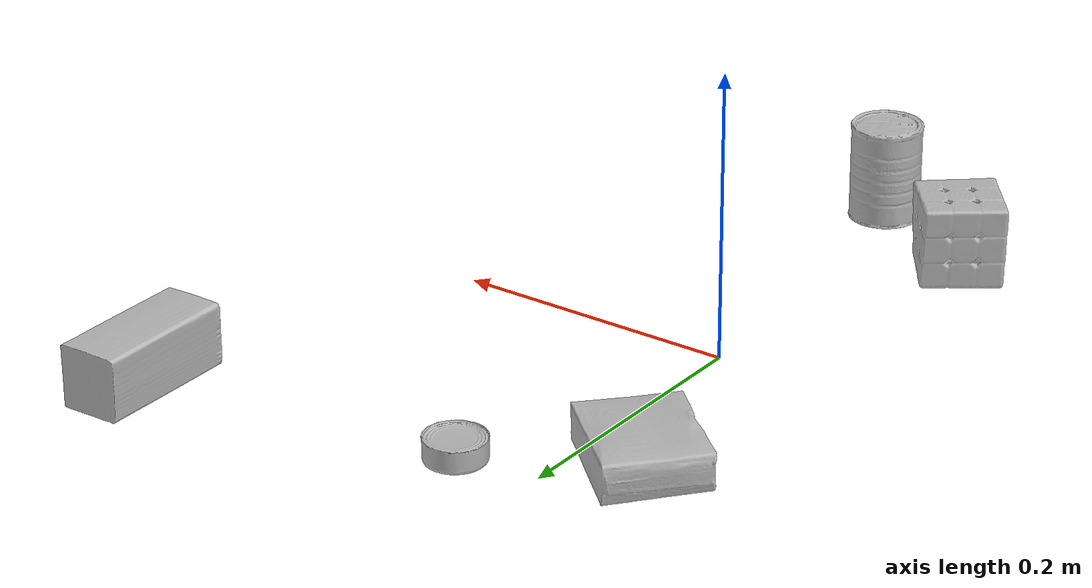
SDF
<sdf version="1.4">
  <world name="default">
    <light name="light1" type="point">
      <pose>0 0 1 0 0 0</pose>
      <diffuse>3 3 3 1</diffuse>
      <specular>3 3 3 1</specular>
    </light>
    <light name="light2" type="point">
      <pose>0 0.5 2 0 0 0</pose>
      <diffuse>1 1 1 1</diffuse>
      <specular>1 1 1 1</specular>
    </light>
    <light name="light3" type="point">
      <pose>0 0.5 2 0 0 0</pose>
      <diffuse>3 3 3 1</diffuse>
      <specular>3 3 3 1</specular>
    </light>
    <scene>
      <ambient>0.7 0.7 0.7</ambient>
    </scene>
    <model name="box1">
      <link name="link_box1">
        <collision name="default">
          <geometry>
            <mesh>
              <uri>model://rubiks_cube/collision_meshes/collision.obj</uri>
              <scale>1.0 1.0 1.0</scale>
            </mesh>
          </geometry>
          <surface>
            <friction>
              <ode>
                <mu>0.5</mu>
                <mu2>0.5</mu2>
              </ode>
            </friction>
          <contact>
        <ode>
            <max_vel>0</max_vel>
            <min_depth>0.0001</min_depth>
            <kp>1e8</kp>
        </ode>
    </contact></surface>
        </collision>
        <visual name="default">
          <geometry>
            <mesh>
              <uri>model://rubiks_cube/visual_meshes/visual.dae</uri>
              <scale>1.0 1.0 1.0</scale>
            </mesh>
          </geometry>
        </visual>
        <inertial>
          <mass>0.1675702929496765</mass>
          <pose>2.6721041649580002e-05 5.2569666877388954e-05 -7.264316082000732e-06 -0.054672410780645164 -0.09813946178663992 -0.034457105846518836</pose>
          <inertia>
            <ixx>9.259384e-05</ixx>
            <iyy>9.2162045e-05</iyy>
            <izz>9.336113e-05</izz>
            <ixy>0</ixy>
            <ixz>0</ixz>
            <iyz>0</iyz>
          </inertia>
        </inertial>
      </link>
      <pose>-0.06008411943912506 -0.20482346415519714 0.02867898717522621 -3.178025001263808e-06 -9.075454926920735e-07 2.2317550686361414</pose>
    </model>
    <model name="box2">
      <link name="link_box2">
        <collision name="default">
          <geometry>
            <mesh>
              <uri>model://wood_block/collision_meshes/collision.obj</uri>
              <scale>0.5 0.5 0.5</scale>
            </mesh>
          </geometry>
          <surface>
            <friction>
              <ode>
                <mu>0.5</mu>
                <mu2>0.5</mu2>
              </ode>
            </friction>
          <contact>
        <ode>
            <max_vel>0</max_vel>
            <min_depth>0.0001</min_depth>
            <kp>1e8</kp>
        </ode>
    </contact></surface>
        </collision>
        <visual name="default">
          <geometry>
            <mesh>
              <uri>model://wood_block/visual_meshes/visual.dae</uri>
              <scale>0.5 0.5 0.5</scale>
            </mesh>
          </geometry>
        </visual>
        <inertial>
          <mass>0.20594346523284912</mass>
          <pose>-2.9066577553749084e-06 -0.000285404734313488 0.00013204291462898254 -0.05220975528833662 -0.005192695571830849 -0.0068613788586691015</pose>
          <inertia>
            <ixx>6.8895875e-05</ixx>
            <iyy>0.0002176421</iyy>
            <izz>0.00021682802</izz>
            <ixy>0</ixy>
            <ixz>0</ixz>
            <iyz>0</iyz>
          </inertia>
        </inertial>
      </link>
      <pose>0.27841049432754517 0.24774688482284546 0.022629264742136 -0.0052085765526900364 0.00571871571880863 -1.5671585587093162</pose>
    </model>
    <model name="box3">
      <link name="link_box3">
        <collision name="default">
          <geometry>
            <mesh>
              <uri>model://gelatin_box/collision_meshes/collision.obj</uri>
              <scale>1.0 1.0 1.0</scale>
            </mesh>
          </geometry>
          <surface>
            <friction>
              <ode>
                <mu>0.5</mu>
                <mu2>0.5</mu2>
              </ode>
            </friction>
          <contact>
        <ode>
            <max_vel>0</max_vel>
            <min_depth>0.0001</min_depth>
            <kp>1e8</kp>
        </ode>
    </contact></surface>
        </collision>
        <visual name="default">
          <geometry>
            <mesh>
              <uri>model://gelatin_box/visual_meshes/visual.dae</uri>
              <scale>1.0 1.0 1.0</scale>
            </mesh>
          </geometry>
        </visual>
        <inertial>
          <mass>0.27371785044670105</mass>
          <pose>0.0004319618456065655 0.00011156871914863586 -0.0003640321083366871 -0.0010503717367230932 -0.004755817294347581 0.01644056133308036</pose>
          <inertia>
            <ixx>0.00019322247</ixx>
            <iyy>0.00013801781</iyy>
            <izz>0.00029412765</izz>
            <ixy>0</ixy>
            <ixz>0</ixz>
            <iyz>0</iyz>
          </inertia>
        </inertial>
      </link>
      <pose>-0.04356585815548897 0.15138179063796997 0.015168312005698681 0.005596973199302873 -0.007303964220763822 -2.313698457104836</pose>
    </model>
    <model name="can1">
      <link name="link_can1">
        <collision name="default">
          <geometry>
            <mesh>
              <uri>model://master_chef_can/collision_meshes/collision.obj</uri>
              <scale>0.5 0.5 0.5</scale>
            </mesh>
          </geometry>
          <surface>
            <friction>
              <ode>
                <mu>0.5</mu>
                <mu2>0.5</mu2>
              </ode>
            </friction>
          <contact>
        <ode>
            <max_vel>0</max_vel>
            <min_depth>0.0001</min_depth>
            <kp>1e8</kp>
        </ode>
    </contact></surface>
        </collision>
        <visual name="default">
          <geometry>
            <mesh>
              <uri>model://master_chef_can/visual_meshes/visual.dae</uri>
              <scale>0.5 0.5 0.5</scale>
            </mesh>
          </geometry>
        </visual>
        <inertial>
          <mass>0.18439537286758423</mass>
          <pose>-4.6619643399026245e-05 1.3926847941547749e-07 -5.080040136817843e-05 -0.0017995053130472594 0.0006479450382529565 -0.6102509153361354</pose>
          <inertia>
            <ixx>0.00010822757</ixx>
            <iyy>0.00010743104</iyy>
            <izz>5.9804017e-05</izz>
            <ixy>0</ixy>
            <ixz>0</ixz>
            <iyz>0</iyz>
          </inertia>
        </inertial>
      </link>
      <pose>0.028707588091492653 -0.25538894534111023 0.035301994532346725 -1.3845507125616682e-06 -1.1024569934748032e-06 -2.033008773167788</pose>
    </model>
    <model name="can2">
      <link name="link_can2">
        <collision name="default">
          <geometry>
            <mesh>
              <uri>model://tuna_fish_can/collision_meshes/collision.obj</uri>
              <scale>0.5 0.5 0.5</scale>
            </mesh>
          </geometry>
          <surface>
            <friction>
              <ode>
                <mu>0.5</mu>
                <mu2>0.5</mu2>
              </ode>
            </friction>
          <contact>
        <ode>
            <max_vel>0</max_vel>
            <min_depth>0.0001</min_depth>
            <kp>1e8</kp>
        </ode>
    </contact></surface>
        </collision>
        <visual name="default">
          <geometry>
            <mesh>
              <uri>model://tuna_fish_can/visual_meshes/visual.dae</uri>
              <scale>0.5 0.5 0.5</scale>
            </mesh>
          </geometry>
        </visual>
        <inertial>
          <mass>0.02825223281979561</mass>
          <pose>-2.0362142095109448e-05 -7.256046956172213e-06 -0.0005269023240543902 -0.0017944745775900258 0.00017164550693472895 0.24055441971144348</pose>
          <inertia>
            <ixx>3.819744e-06</ixx>
            <iyy>3.803824e-06</iyy>
            <izz>6.536128e-06</izz>
            <ixy>0</ixy>
            <ixz>0</ixz>
            <iyz>0</iyz>
          </inertia>
        </inertial>
      </link>
      <pose>0.05581941828131676 0.2101227343082428 0.00851999782025814 -1.922979623865222e-08 -6.316545555166888e-13 0.8952471543390049</pose>
    </model>
  <physics type="ode">
      <max_contacts>50</max_contacts>
      <ode>
        <solver>
          <type>quick</type>
          <iters>75</iters>
        </solver>
        <constraints>
          <contact_max_correcting_vel>0</contact_max_correcting_vel>
          <contact_surface_layer>0</contact_surface_layer>
        </constraints>
      </ode>
    </physics></world>
</sdf>
